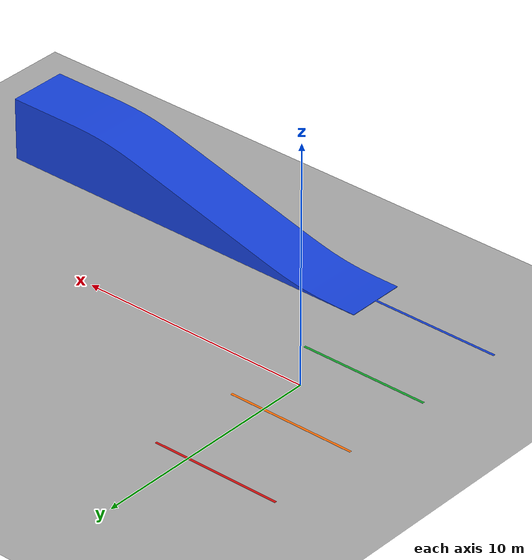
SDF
<sdf version="1.10">
 <world name="go2w_slope_test">
  <physics name="1ms" type="ignored">
   <max_step_size>0.001</max_step_size>
   <real_time_factor>1.0</real_time_factor>
  </physics>
  <plugin filename="gz-sim-physics-system" name="gz::sim::systems::Physics"/>
  <plugin filename="gz-sim-user-commands-system" name="gz::sim::systems::UserCommands"/>
  <plugin filename="gz-sim-scene-broadcaster-system" name="gz::sim::systems::SceneBroadcaster"/>
  <plugin filename="gz-sim-contact-system" name="gz::sim::systems::Contact"/>
  <light type="directional" name="sun">
   <pose>0 0 10 0 0 0</pose>
   <diffuse>0.8 0.8 0.8 1</diffuse>
   <specular>0.2 0.2 0.2 1</specular>
   <attenuation>
    <range>1000</range>
    <constant>0.9</constant>
    <linear>0.01</linear>
    <quadratic>0.001</quadratic>
   </attenuation>
   <direction>-0.5 0.1 -0.9</direction>
  </light>
  <model name="ground_plane">
   <static>true</static>
   <link name="link">
    <collision name="collision">
     <geometry><plane><normal>0 0 1</normal><size>100 100</size></plane></geometry>
     <surface><friction><ode><mu>1.0</mu><mu2>1.0</mu2></ode></friction></surface>
    </collision>
    <visual name="visual">
     <geometry><plane><normal>0 0 1</normal><size>100 100</size></plane></geometry>
     <material>
      <ambient>0.65 0.65 0.65 1</ambient>
      <diffuse>0.65 0.65 0.65 1</diffuse>
      <specular>0.2 0.2 0.2 1</specular>
     </material>
    </visual>
   </link>
  </model>
  <model name="ramp_15_deg">
   <static>true</static>
   <pose>1.5 -6.0 0 0 0 0</pose>
   <link name="link">
    <collision name="collision">
     <geometry>
      <mesh><uri>package://quadruped_bringup/worlds/go2w_curved_ramp_15.obj</uri><scale>1 1 1</scale></mesh>
     </geometry>
     <surface><friction><ode><mu>1.0</mu><mu2>1.0</mu2></ode></friction></surface>
    </collision>
    <visual name="visual">
     <geometry>
      <mesh><uri>package://quadruped_bringup/worlds/go2w_curved_ramp_15.obj</uri><scale>1 1 1</scale></mesh>
     </geometry>
     <material>
      <ambient>0.08 0.25 0.85 1</ambient>
      <diffuse>0.08 0.25 0.85 1</diffuse>
      <specular>0.2 0.2 0.2 1</specular>
     </material>
    </visual>
   </link>
  </model>
  <model name="approach_marker_15_deg">
   <static>true</static>
   <pose>-1.25 -6.0 0.005 0 0 0</pose>
   <link name="link">
    <visual name="visual">
     <geometry><box><size>5.5 0.10 0.01</size></box></geometry>
     <material><ambient>0.08 0.25 0.85 1</ambient><diffuse>0.08 0.25 0.85 1</diffuse></material>
    </visual>
   </link>
  </model>
  <model name="approach_marker_30_deg">
   <static>true</static>
   <pose>-1.25 -2.0 0.005 0 0 0</pose>
   <link name="link">
    <visual name="visual">
     <geometry><box><size>5.5 0.10 0.01</size></box></geometry>
     <material><ambient>0.08 0.65 0.18 1</ambient><diffuse>0.08 0.65 0.18 1</diffuse></material>
    </visual>
   </link>
  </model>
  <model name="approach_marker_35_deg">
   <static>true</static>
   <pose>-1.25 2.0 0.005 0 0 0</pose>
   <link name="link">
    <visual name="visual">
     <geometry><box><size>5.5 0.10 0.01</size></box></geometry>
     <material><ambient>1.0 0.45 0.04 1</ambient><diffuse>1.0 0.45 0.04 1</diffuse></material>
    </visual>
   </link>
  </model>
  <model name="approach_marker_45_deg">
   <static>true</static>
   <pose>-1.25 6.0 0.005 0 0 0</pose>
   <link name="link">
    <visual name="visual">
     <geometry><box><size>5.5 0.10 0.01</size></box></geometry>
     <material><ambient>0.85 0.06 0.06 1</ambient><diffuse>0.85 0.06 0.06 1</diffuse></material>
    </visual>
   </link>
  </model>
 </world>
</sdf>
